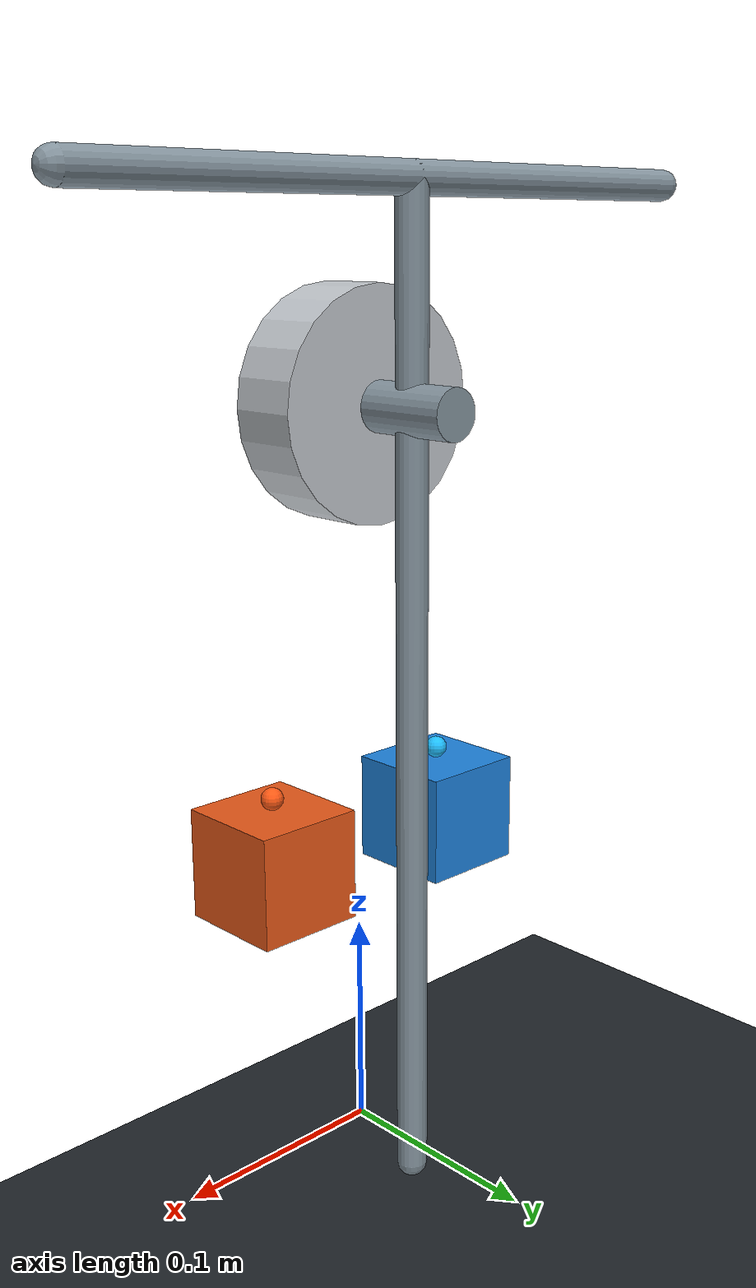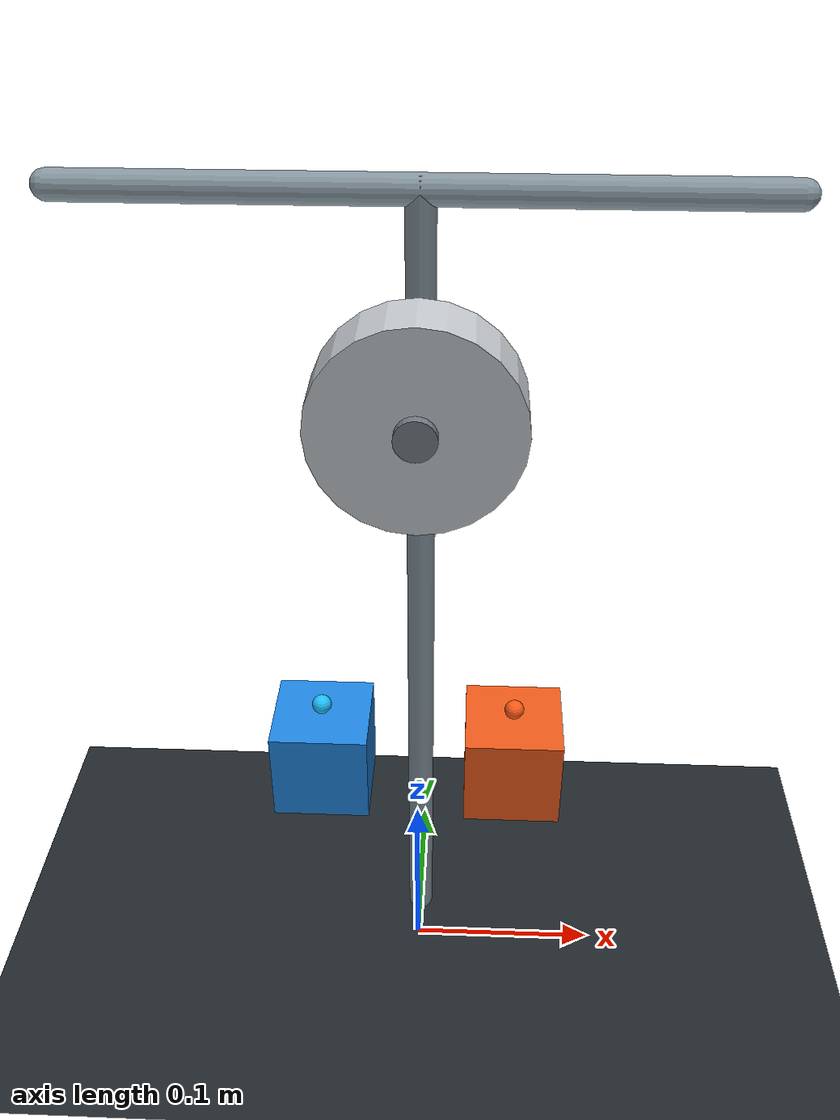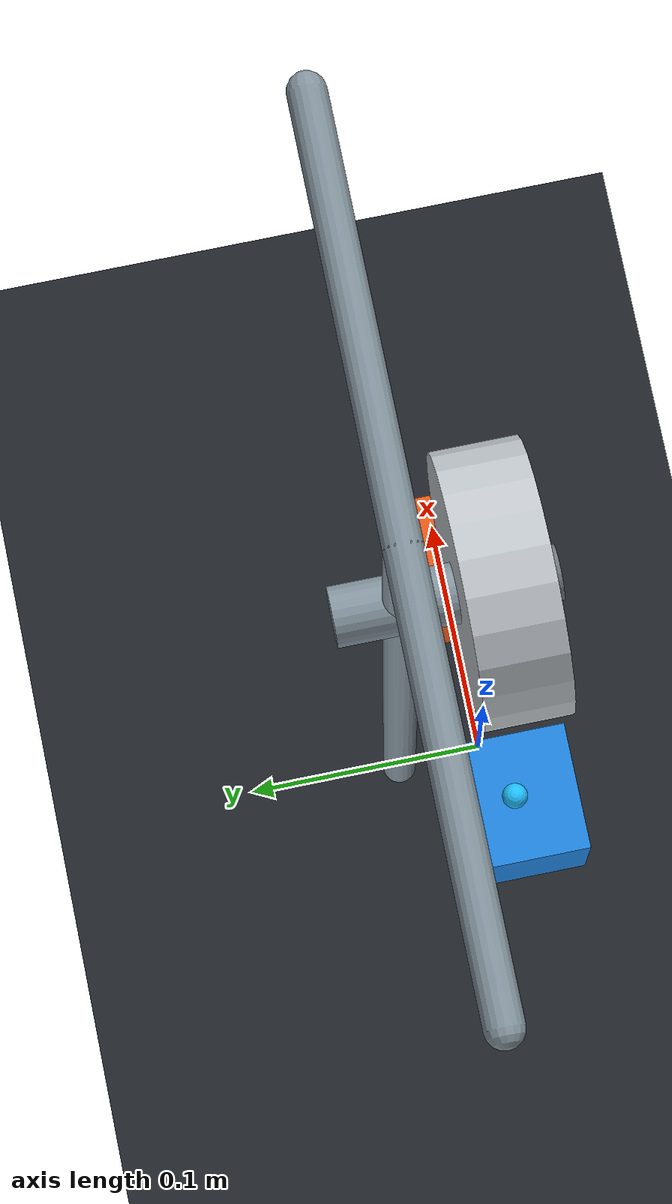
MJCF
<mujoco model="cable_demo_free_rotating_inertial_pulley">
  <compiler autolimits="true" angle="radian" />
  <size nuser_site="1" />
  <option timestep="0.0002" gravity="0 0 -9.81" integrator="RK4">
    <flag energy="enable" />
  </option>

  <extension>
    <plugin plugin="mujoco.cable.unilateral">
      <instance name="free_pulley_cable">
        <config key="stiffness" value="15000" />
        <config key="damping" value="0" />
        <config key="slack" value="0" />
        <config key="home_length" value="auto_initial" />
        <config key="pretension_offset" value="0.00015" />
        <config key="max_tension" value="100" />
        <config key="route_mode" value="surface" />
        <config key="route_tendon" value="free_pulley_seed" />
        <config key="wrap_geoms" value="free_pulley_wrap" />
        <config key="site_role_user_index" value="0" />
        <config key="capstan_mu" value="0.12" />
        <config key="capstan_direction" value="velocity" />
        <config key="capstan_velocity_scale" value="0.020" />
        <config key="visual_width" value="2" />
      </instance>
    </plugin>
  </extension>

  <asset>
    <material name="frame" rgba="0.52 0.58 0.62 1" />
    <material name="pulley" rgba="0.76 0.78 0.80 1" />
    <material name="light_mass" rgba="0.12 0.52 0.88 1" />
    <material name="heavy_mass" rgba="0.92 0.35 0.10 1" />
  </asset>

  <default>
    <site size="0.004" />
    <default class="route_hint">
      <site size="0.0001" rgba="1 0.8 0 0" user="2" />
    </default>
  </default>

  <worldbody>
    <light name="key" pos="-0.25 -0.8 0.75" dir="0.2 0.8 -0.7" />
    <camera name="overview" pos="0 -0.72 0.25" xyaxes="1 0 0 0 0 1" />

    <geom name="floor" type="plane" pos="0 0 -0.03"
          size="0.34 0.25 0.01" rgba="0.13 0.15 0.17 1" />
    <geom name="support_post" type="capsule"
          fromto="0 0.035 -0.01 0 0.035 0.43" size="0.007"
          material="frame" contype="0" conaffinity="0" />
    <geom name="support_beam" type="capsule"
          fromto="-0.16 0.035 0.43 0.16 0.035 0.43" size="0.007"
          material="frame" contype="0" conaffinity="0" />
    <geom name="axle_support" type="cylinder" pos="0 0.025 0.34"
          euler="1.57079632679 0 0" size="0.011 0.035"
          material="frame" contype="0" conaffinity="0" />

    <body name="free_pulley" pos="0 0 0.34">
      <joint name="pulley_hinge" type="hinge" axis="0 1 0"
             damping="0" frictionloss="0" />
      <geom name="free_pulley_wrap" type="cylinder"
            euler="1.57079632679 0 0" size="0.050 0.016"
            mass="0.080" material="pulley" contype="0" conaffinity="0" />
      <geom name="pulley_hub" type="cylinder"
            euler="1.57079632679 0 0" size="0.010 0.021"
            density="0" rgba="0.44 0.47 0.50 1"
            contype="0" conaffinity="0" />
      <geom name="pulley_spoke_a" type="capsule"
            fromto="-0.038 0 0 0.038 0 0" size="0.0025"
            density="0" rgba="0.25 0.28 0.30 1"
            contype="0" conaffinity="0" />
      <geom name="pulley_spoke_b" type="capsule"
            fromto="0 0 -0.038 0 0 0.038" size="0.0025"
            density="0" rgba="0.25 0.28 0.30 1"
            contype="0" conaffinity="0" />
    </body>

    <site name="pulley_upper_hint" class="route_hint" pos="0 0 0.395" />

    <!-- The endpoint x coordinates coincide with the vertical tangents of
         the R=0.05 m pulley, so slide forces equal the segment tensions. -->
    <body name="left_mass" pos="-0.050 0 0.145">
      <joint name="left_slide" type="slide" axis="0 0 1"
             range="-0.10 0.10" damping="0" frictionloss="0" />
      <geom name="left_payload" type="box" size="0.025 0.025 0.025"
            mass="0.180" material="light_mass" />
      <site name="left_cable_end" pos="0 0 0.030" user="1"
            size="0.005" rgba="0.12 0.75 1 1" />
    </body>

    <body name="right_mass" pos="0.050 0 0.145">
      <joint name="right_slide" type="slide" axis="0 0 1"
             range="-0.10 0.10" damping="0" frictionloss="0" />
      <geom name="right_payload" type="box" size="0.025 0.025 0.025"
            mass="0.240" material="heavy_mass" />
      <site name="right_cable_end" pos="0 0 0.030" user="1"
            size="0.005" rgba="1 0.35 0.08 1" />
    </body>
  </worldbody>

  <tendon>
    <spatial name="free_pulley_seed" limited="false" width="0.000000001"
             rgba="1 0.78 0.08 1">
      <site site="left_cable_end" />
      <site site="pulley_upper_hint" />
      <site site="right_cable_end" />
    </spatial>
  </tendon>

  <sensor>
    <plugin name="free_pulley_state" instance="free_pulley_cable" />
    <jointpos name="pulley_angle" joint="pulley_hinge" />
    <jointvel name="pulley_angular_velocity" joint="pulley_hinge" />
    <jointpos name="left_displacement" joint="left_slide" />
    <jointvel name="left_velocity" joint="left_slide" />
    <jointpos name="right_displacement" joint="right_slide" />
    <jointvel name="right_velocity" joint="right_slide" />
  </sensor>
</mujoco>
